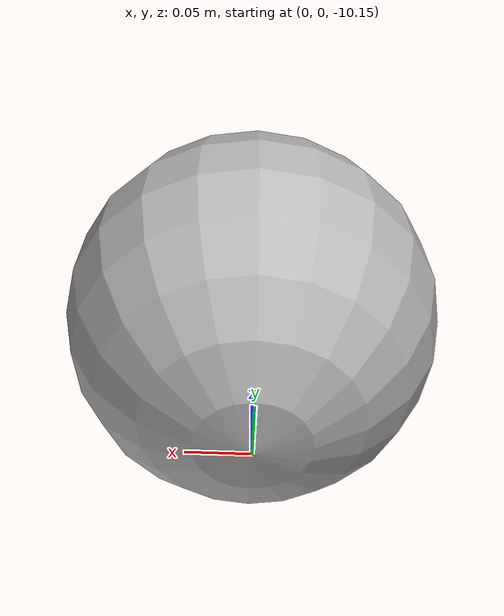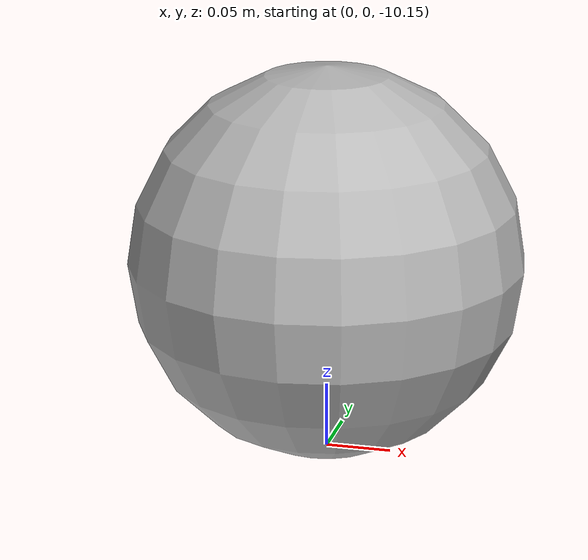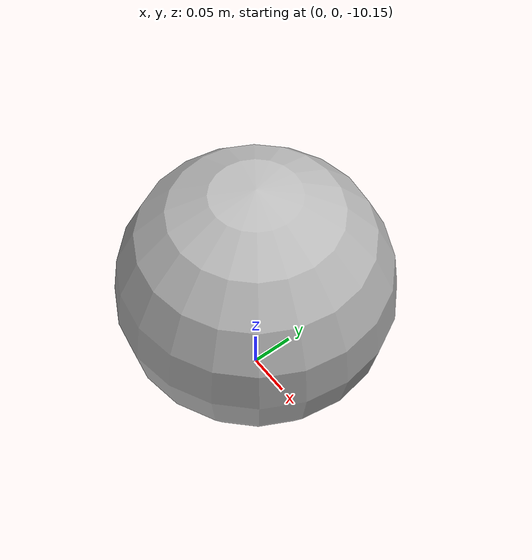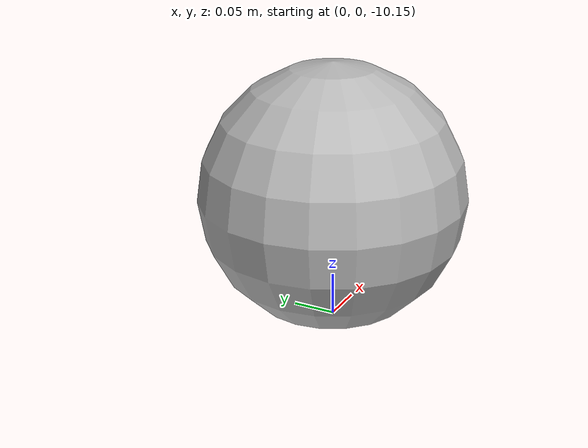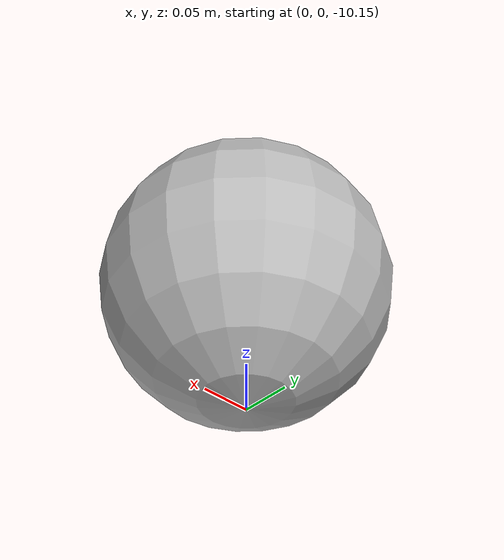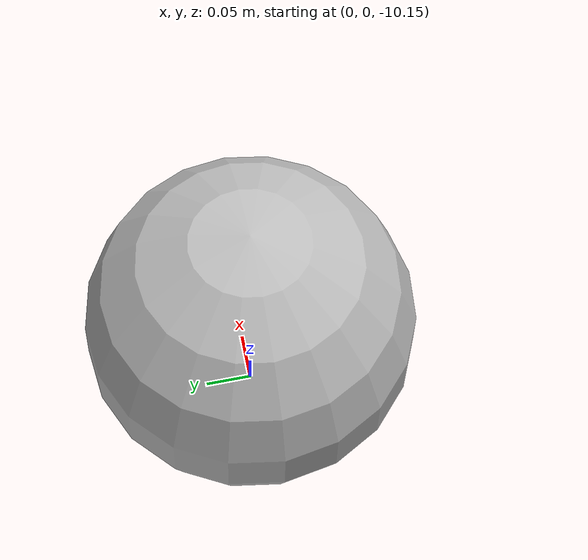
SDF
<?xml version="1.0"?>
<sdf version="1.7">
  <model name="sp_nodepth">
    <static>true</static>
    <pose>0 0 -10 0 0 0</pose>
    <link name="base_link">
      <visual name="visual">
        <geometry><sphere><radius>0.15</radius></sphere></geometry>
      </visual>
    </link>
    <plugin filename="sea_pressure_sensor"
            name="dave_gz_sensor_plugins::SubseaPressureSensorPlugin">
      <namespace>sp_nodepth</namespace>
      <topic>sea_pressure</topic>
      <update_rate>10</update_rate>
      <estimate_depth_on>true</estimate_depth_on>
      <kPa_per_meter>9.80638</kPa_per_meter>
      <standard_pressure>101.325</standard_pressure><estimate_depth_on>false</estimate_depth_on>
    </plugin>
  </model>
</sdf>
